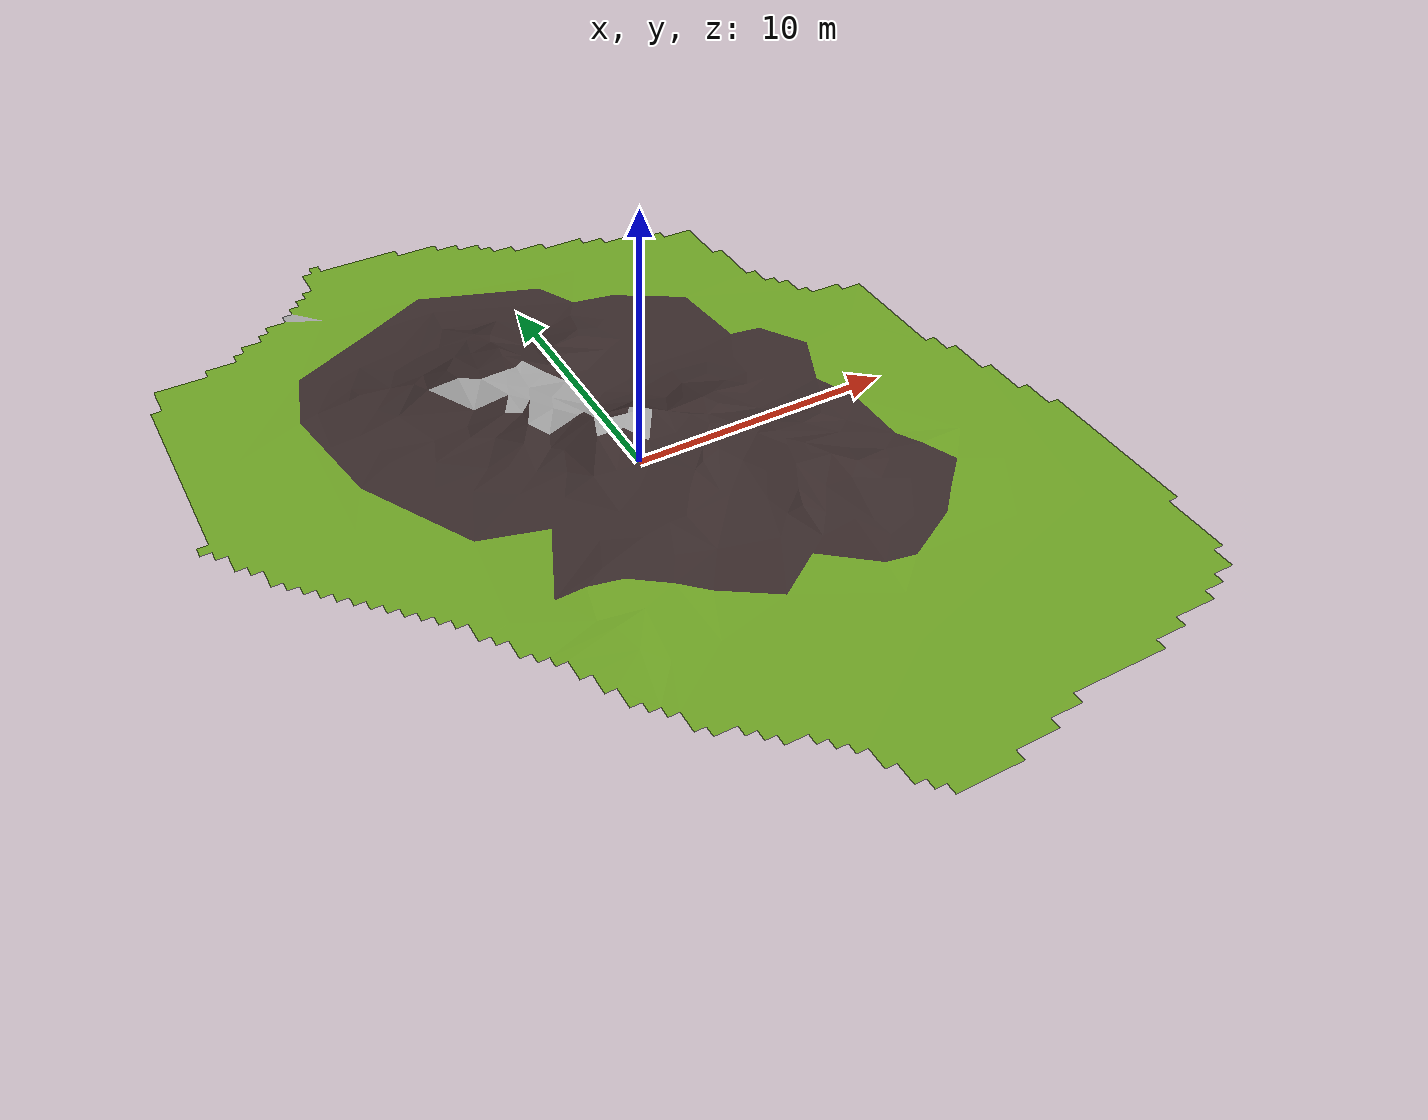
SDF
<?xml version="1.0" ?>
<sdf version="1.4">
<model name="shamel_terrain">
<static>true</static>
<link name="link">
<pose>0 0 0 0 0 0</pose>
<collision name="collision"> <geometry> <mesh> <uri>model://vital_terrain/mesh/terrain.dae</uri> <scale>1 1 0.25</scale> </mesh> </geometry> </collision>
<visual name="visual">       <geometry> <mesh> <uri>model://vital_terrain/mesh/terrain.dae</uri> <scale>1 1 0.25</scale> </mesh> </geometry> </visual>
</link>
</model>
</sdf>
